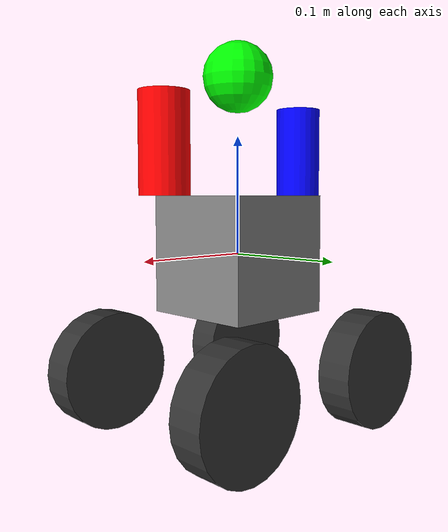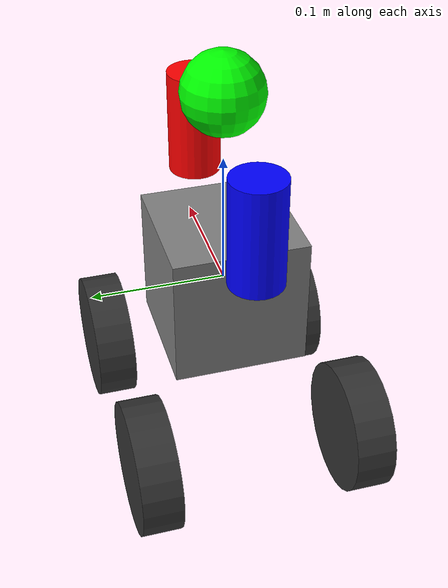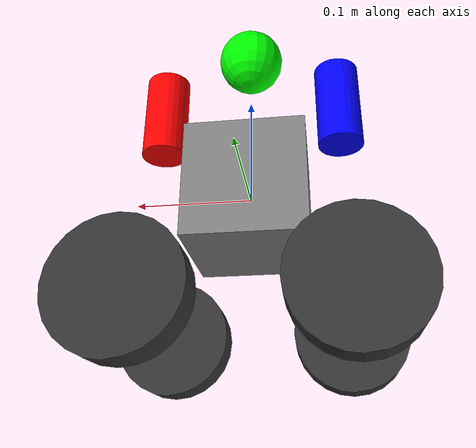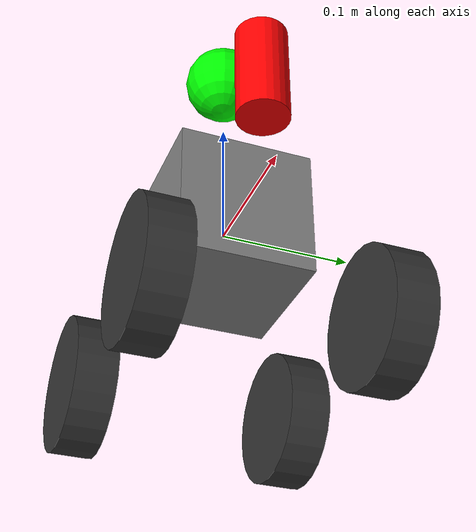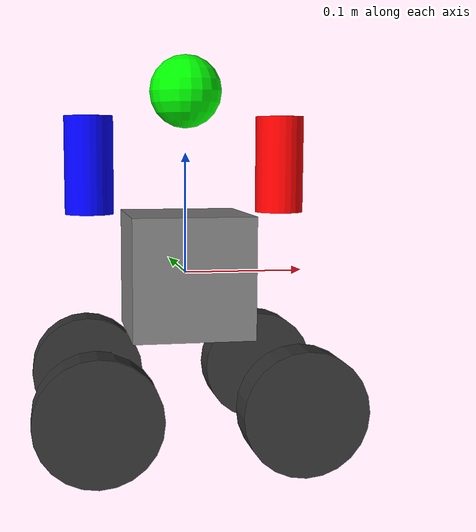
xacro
<?xml version='1.0' encoding='UTF-8'?>
<robot name="jedy_robot" xmlns:xacro="http://www.ros.org/wiki/xacro">
  <link name="base_link">
    <inertial>
      <origin xyz="0 0 0.05" rpy="0 0 0"/>
      <mass value="1.0"/>
      <inertia ixx="0.01" ixy="0.0" ixz="0.0" iyy="0.01" iyz="0.0" izz="0.01"/>
    </inertial>
    <visual>
      <geometry>
        <box size="0.1 0.1 0.1"/>
      </geometry>
      <material name="grey">
        <color rgba="0.5 0.5 0.5 1"/>
      </material>
      <origin xyz="0.0 0.0 0.0" rpy="0 0 0"/>
    </visual>
    <collision>
      <geometry>
        <box size="0.1 0.1 0.1"/>
      </geometry>
      <origin xyz="0.0 0.0 0.0" rpy="0 0 0"/>
    </collision>
  </link>

  <link name="rarm_link0">
    <inertial>
      <origin xyz="0 0 0" rpy="0 0 0"/>
      <mass value="0.1"/>
      <inertia ixx="0.001" ixy="0.0" ixz="0.0" iyy="0.001" iyz="0.0" izz="0.001"/>
    </inertial>
    <visual>
      <geometry>
        <cylinder radius="0.02" length="0.08"/>
      </geometry>
      <material name="red">
        <color rgba="1 0 0 1"/>
      </material>
      <origin xyz="0 0 0.04" rpy="0 0 0"/>
    </visual>
    <collision>
      <geometry>
        <cylinder radius="0.02" length="0.08"/>
      </geometry>
      <origin xyz="0 0 0.04" rpy="0 0 0"/>
    </collision>
  </link>

  <link name="larm_link0">
    <inertial>
      <origin xyz="0 0 0" rpy="0 0 0"/>
      <mass value="0.1"/>
      <inertia ixx="0.001" ixy="0.0" ixz="0.0" iyy="0.001" iyz="0.0" izz="0.001"/>
    </inertial>
    <visual>
      <geometry>
        <cylinder radius="0.02" length="0.08"/>
      </geometry>
      <material name="blue">
        <color rgba="0 0 1 1"/>
      </material>
      <origin xyz="0 0 0.04" rpy="0 0 0"/>
    </visual>
    <collision>
      <geometry>
        <cylinder radius="0.02" length="0.08"/>
      </geometry>
      <origin xyz="0 0 0.04" rpy="0 0 0"/>
    </collision>
  </link>

  <link name="head_link0">
    <inertial>
      <origin xyz="0 0 0" rpy="0 0 0"/>
      <mass value="0.1"/>
      <inertia ixx="0.001" ixy="0.0" ixz="0.0" iyy="0.001" iyz="0.0" izz="0.001"/>
    </inertial>
    <visual>
      <geometry>
        <sphere radius="0.03"/>
      </geometry>
      <material name="green">
        <color rgba="0 1 0 1"/>
      </material>
      <origin xyz="0 0 0" rpy="0 0 0"/>
    </visual>
    <collision>
      <geometry>
        <sphere radius="0.03"/>
      </geometry>
      <origin xyz="0 0 0" rpy="0 0 0"/>
    </collision>
  </link>

  <!-- Mechanum wheels -->
  <link name="mechanum_link1">
    <inertial>
      <origin xyz="0 0 0" rpy="0 0 0"/>
      <mass value="0.2"/>
      <inertia ixx="0.001" ixy="0.0" ixz="0.0" iyy="0.001" iyz="0.0" izz="0.001"/>
    </inertial>
    <visual>
      <geometry>
        <cylinder radius="0.05" length="0.03"/>
      </geometry>
      <material name="black">
        <color rgba="0.2 0.2 0.2 1"/>
      </material>
      <origin xyz="0 0 0" rpy="1.5708 0 0"/>
    </visual>
    <collision>
      <geometry>
        <cylinder radius="0.05" length="0.03"/>
      </geometry>
      <origin xyz="0 0 0" rpy="1.5708 0 0"/>
    </collision>
  </link>

  <link name="mechanum_link2">
    <inertial>
      <origin xyz="0 0 0" rpy="0 0 0"/>
      <mass value="0.2"/>
      <inertia ixx="0.001" ixy="0.0" ixz="0.0" iyy="0.001" iyz="0.0" izz="0.001"/>
    </inertial>
    <visual>
      <geometry>
        <cylinder radius="0.05" length="0.03"/>
      </geometry>
      <material name="black">
        <color rgba="0.2 0.2 0.2 1"/>
      </material>
      <origin xyz="0 0 0" rpy="1.5708 0 0"/>
    </visual>
    <collision>
      <geometry>
        <cylinder radius="0.05" length="0.03"/>
      </geometry>
      <origin xyz="0 0 0" rpy="1.5708 0 0"/>
    </collision>
  </link>

  <link name="mechanum_link3">
    <inertial>
      <origin xyz="0 0 0" rpy="0 0 0"/>
      <mass value="0.2"/>
      <inertia ixx="0.001" ixy="0.0" ixz="0.0" iyy="0.001" iyz="0.0" izz="0.001"/>
    </inertial>
    <visual>
      <geometry>
        <cylinder radius="0.05" length="0.03"/>
      </geometry>
      <material name="black">
        <color rgba="0.2 0.2 0.2 1"/>
      </material>
      <origin xyz="0 0 0" rpy="1.5708 0 0"/>
    </visual>
    <collision>
      <geometry>
        <cylinder radius="0.05" length="0.03"/>
      </geometry>
      <origin xyz="0 0 0" rpy="1.5708 0 0"/>
    </collision>
  </link>

  <link name="mechanum_link4">
    <inertial>
      <origin xyz="0 0 0" rpy="0 0 0"/>
      <mass value="0.2"/>
      <inertia ixx="0.001" ixy="0.0" ixz="0.0" iyy="0.001" iyz="0.0" izz="0.001"/>
    </inertial>
    <visual>
      <geometry>
        <cylinder radius="0.05" length="0.03"/>
      </geometry>
      <material name="black">
        <color rgba="0.2 0.2 0.2 1"/>
      </material>
      <origin xyz="0 0 0" rpy="1.5708 0 0"/>
    </visual>
    <collision>
      <geometry>
        <cylinder radius="0.05" length="0.03"/>
      </geometry>
      <origin xyz="0 0 0" rpy="1.5708 0 0"/>
    </collision>
  </link>

  <!-- Joints -->
  <joint name="rarm_joint0" type="revolute">
    <limit effort="0.48" velocity="6.55" lower="-2.35" upper="2.35"/>
    <parent link="base_link"/>
    <child link="rarm_link0"/>
    <axis xyz="0 1 0"/>
    <origin xyz="0.08 0 0.05" rpy="0 0 0"/>
  </joint>

  <joint name="larm_joint0" type="revolute">
    <limit effort="0.48" velocity="6.55" lower="-2.35" upper="2.35"/>
    <parent link="base_link"/>
    <child link="larm_link0"/>
    <axis xyz="0 -1 0"/>
    <origin xyz="-0.08 0 0.05" rpy="0 0 0"/>
  </joint>

  <joint name="head_joint0" type="revolute">
    <limit effort="0.48" velocity="6.55" lower="-2.35" upper="2.35"/>
    <parent link="base_link"/>
    <child link="head_link0"/>
    <axis xyz="0 0 1"/>
    <origin xyz="0 0 0.15" rpy="0 0 0"/>
  </joint>

  <!-- Mechanum wheel joints - properly positioned to touch ground -->
  <joint name="mechanum_joint1" type="continuous">
    <limit effort="0.48" velocity="6.55"/>
    <parent link="base_link"/>
    <child link="mechanum_link1"/>
    <axis xyz="0 1 0"/>
    <origin xyz="0.08 0.08 -0.10" rpy="0 0 0"/>
  </joint>

  <joint name="mechanum_joint2" type="continuous">
    <limit effort="0.48" velocity="6.55"/>
    <parent link="base_link"/>
    <child link="mechanum_link2"/>
    <axis xyz="0 1 0"/>
    <origin xyz="0.08 -0.08 -0.10" rpy="0 0 0"/>
  </joint>

  <joint name="mechanum_joint3" type="continuous">
    <limit effort="0.48" velocity="6.55"/>
    <parent link="base_link"/>
    <child link="mechanum_link3"/>
    <axis xyz="0 1 0"/>
    <origin xyz="-0.08 0.08 -0.10" rpy="0 0 0"/>
  </joint>

  <joint name="mechanum_joint4" type="continuous">
    <limit effort="0.48" velocity="6.55"/>
    <parent link="base_link"/>
    <child link="mechanum_link4"/>
    <axis xyz="0 1 0"/>
    <origin xyz="-0.08 -0.08 -0.10" rpy="0 0 0"/>
  </joint>

  <!-- ros2_control hardware interface -->
  <ros2_control name="GazeboSimSystem" type="system">
    <hardware>
      <plugin>gz_ros2_control/GazeboSimSystem</plugin>
    </hardware>

    <!-- Mechanum wheel joints -->
    <joint name="mechanum_joint1">
      <command_interface name="velocity">
        <param name="min">-10</param>
        <param name="max">10</param>
      </command_interface>
      <state_interface name="position"/>
      <state_interface name="velocity"/>
    </joint>

    <joint name="mechanum_joint2">
      <command_interface name="velocity">
        <param name="min">-10</param>
        <param name="max">10</param>
      </command_interface>
      <state_interface name="position"/>
      <state_interface name="velocity"/>
    </joint>

    <joint name="mechanum_joint3">
      <command_interface name="velocity">
        <param name="min">-10</param>
        <param name="max">10</param>
      </command_interface>
      <state_interface name="position"/>
      <state_interface name="velocity"/>
    </joint>

    <joint name="mechanum_joint4">
      <command_interface name="velocity">
        <param name="min">-10</param>
        <param name="max">10</param>
      </command_interface>
      <state_interface name="position"/>
      <state_interface name="velocity"/>
    </joint>

    <!-- Arm and head joints -->
    <joint name="rarm_joint0">
      <command_interface name="position">
        <param name="min">-2.35</param>
        <param name="max">2.35</param>
      </command_interface>
      <state_interface name="position"/>
      <state_interface name="velocity"/>
    </joint>

    <joint name="larm_joint0">
      <command_interface name="position">
        <param name="min">-2.35</param>
        <param name="max">2.35</param>
      </command_interface>
      <state_interface name="position"/>
      <state_interface name="velocity"/>
    </joint>

    <joint name="head_joint0">
      <command_interface name="position">
        <param name="min">-2.35</param>
        <param name="max">2.35</param>
      </command_interface>
      <state_interface name="position"/>
      <state_interface name="velocity"/>
    </joint>
  </ros2_control>

  <!-- Gazebo plugins -->
  <gazebo>
    <plugin filename="gz_ros2_control-system" name="gz_ros2_control::GazeboSimROS2ControlPlugin">
      <parameters>$(find jedy_bringup)/config/jedy_mecanum_controllers.ros2.yaml</parameters>
    </plugin>
  </gazebo>
</robot>
